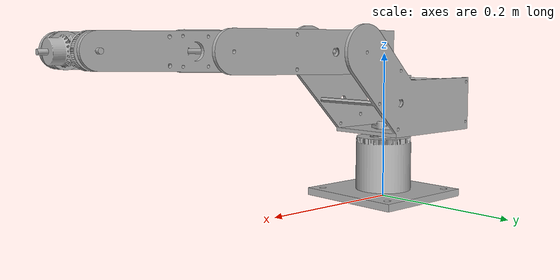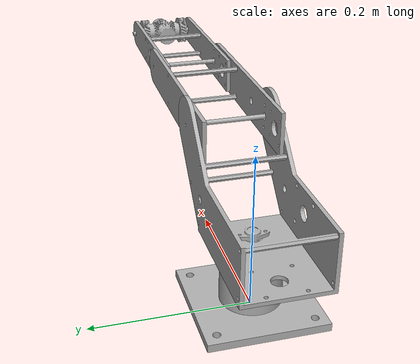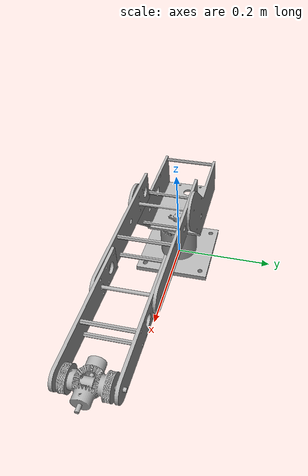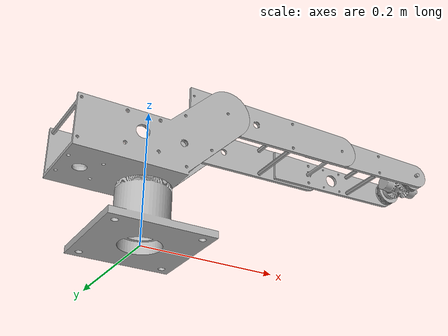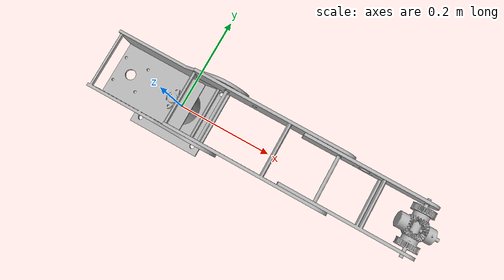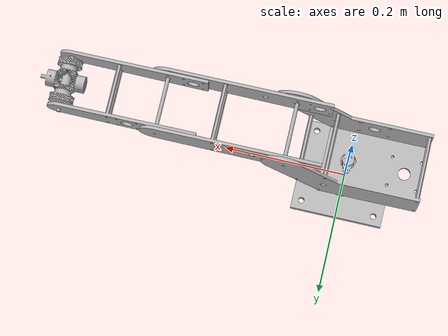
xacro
<?xml version="1.0" ?>
<!-- |    This document was autogenerated by xacro from /home/edmilson/catkin_ws/src/ude_test/ude_test_description/urdf/ude_test.xacro | -->
<!-- |    EDITING THIS FILE BY HAND IS NOT RECOMMENDED                                 | -->
<robot name="ude_test" xmlns:xacro="http://www.ros.org/wiki/xacro">
    <material name="silver">
        <color rgba="0.700 0.700 0.700 1.000" />
    </material>
    <transmission name="trans_joint1">
        <type>transmission_interface/SimpleTransmission</type>
        <joint name="joint1">
            <hardwareInterface>hardware_interface/EffortJointInterface</hardwareInterface>
        </joint>
        <actuator name="joint1_motor">
            <hardwareInterface>hardware_interface/EffortJointInterface</hardwareInterface>
            <mechanicalReduction>1</mechanicalReduction>
        </actuator>
    </transmission>
    <transmission name="trans_joint2">
        <type>transmission_interface/SimpleTransmission</type>
        <joint name="joint2">
            <hardwareInterface>hardware_interface/EffortJointInterface</hardwareInterface>
        </joint>
        <actuator name="joint2_motor">
            <hardwareInterface>hardware_interface/EffortJointInterface</hardwareInterface>
            <mechanicalReduction>1</mechanicalReduction>
        </actuator>
    </transmission>
    <transmission name="trans_joint3">
        <type>transmission_interface/SimpleTransmission</type>
        <joint name="joint3">
            <hardwareInterface>hardware_interface/EffortJointInterface</hardwareInterface>
        </joint>
        <actuator name="joint3_motor">
            <hardwareInterface>hardware_interface/EffortJointInterface</hardwareInterface>
            <mechanicalReduction>1</mechanicalReduction>
        </actuator>
    </transmission>
    <transmission name="trans_joint4">
        <type>transmission_interface/SimpleTransmission</type>
        <joint name="joint4">
            <hardwareInterface>hardware_interface/EffortJointInterface</hardwareInterface>
        </joint>
        <actuator name="joint4_motor">
            <hardwareInterface>hardware_interface/EffortJointInterface</hardwareInterface>
            <mechanicalReduction>1</mechanicalReduction>
        </actuator>
    </transmission>
    <gazebo>
        <plugin name="gazebo_ros_control" filename="libgazebo_ros_control.so">
            <robotSimType>gazebo_ros_control/DefaultRobotHWSim</robotSimType>
            <legacyModeNS>true</legacyModeNS>
        </plugin>
    </gazebo>

    <gazebo reference="base_link">
        <material>Gazebo/Silver</material>
        <mu1>0.2</mu1>
        <mu2>0.2</mu2>
        <selfCollide>true</selfCollide>
        <gravity>true</gravity>
    </gazebo>
    <gazebo reference="base_1">
        <material>Gazebo/Silver</material>
        <mu1>0.2</mu1>
        <mu2>0.2</mu2>
        <selfCollide>true</selfCollide>
    </gazebo>
    <gazebo reference="centro_1">
        <material>Gazebo/Silver</material>
        <mu1>0.2</mu1>
        <mu2>0.2</mu2>
        <selfCollide>true</selfCollide>
    </gazebo>
    <gazebo reference="superior_1">
        <material>Gazebo/Silver</material>
        <mu1>0.2</mu1>
        <mu2>0.2</mu2>
        <selfCollide>true</selfCollide>
    </gazebo>
    <gazebo reference="punho_1">
        <material>Gazebo/Silver</material>
        <mu1>0.2</mu1>
        <mu2>0.2</mu2>
        <selfCollide>true</selfCollide>
    </gazebo>

    <link name="world"/>

    <link name="base_link">
        <inertial>
            <origin rpy="0 0 0" xyz="5.710007331408909e-12 -1.1644376128304597e-13 0.030568937878395663" />
            <mass value="1.1785035355525202" />
            <inertia ixx="0.002276" ixy="-0.0" ixz="-0.0" iyy="0.002276" iyz="-0.0" izz="0.002779" />
        </inertial>

        <visual>
            <origin rpy="0 0 0" xyz="0 0 0" />
            <geometry>
                <mesh filename="package://ude_test_description/meshes/base_link.stl" scale="0.001 0.001 0.001" />
            </geometry>
            <material name="silver" />
        </visual>
        <collision>
            <origin rpy="0 0 0" xyz="0 0 0" />
            <geometry>
                <mesh filename="package://ude_test_description/meshes/base_link.stl" scale="0.001 0.001 0.001" />
            </geometry>
        </collision>
    </link>
    <link name="base_1">
        <inertial>
            <origin rpy="0 0 0" xyz="-0.00554725663950478 0.000967644113690025 0.057553169706411264" />
            <mass value="0.7929685802085628" />
            <inertia ixx="0.002977" ixy="3e-06" ixz="-0.001299" iyy="0.004869" iyz="-5e-06" izz="0.005235" />
        </inertial>

        <visual>
            <origin rpy="0 0 0" xyz="0.0 0.0 -0.074675" />
            <geometry>
                <mesh filename="package://ude_test_description/meshes/base_1.stl" scale="0.001 0.001 0.001" />
            </geometry>
            <material name="silver" />
        </visual>
        <collision>
            <origin rpy="0 0 0" xyz="0.0 0.0 -0.074675" />
            <geometry>
                <mesh filename="package://ude_test_description/meshes/base_1.stl" scale="0.001 0.001 0.001" />
            </geometry>
        </collision>
    </link>
    <link name="centro_1">
        <inertial>
            <origin rpy="0 0 0" xyz="0.08388027617634465 0.04573033642969338 0.0007305036097426942" />
            <mass value="0.40207170281895677" />
            <inertia ixx="0.000983" ixy="2.3e-05" ixz="-2.2e-05" iyy="0.00267" iyz="0.0" izz="0.003461" />
        </inertial>

        <visual>
            <origin rpy="0 0 0" xyz="-0.096621 0.044123 -0.202696" />
            <geometry>
                <mesh filename="package://ude_test_description/meshes/centro_1.stl" scale="0.001 0.001 0.001" />
            </geometry>
            <material name="silver" />
        </visual>
        <collision>
            <origin rpy="0 0 0" xyz="-0.096621 0.044123 -0.202696" />
            <geometry>
                <mesh filename="package://ude_test_description/meshes/centro_1.stl" scale="0.001 0.001 0.001" />
            </geometry>
        </collision>
    </link>
    <link name="superior_1">
        <inertial>
            <origin rpy="0 0 0" xyz="0.05025376123182013 0.042250903270122424 0.0004383003960906906" />
            <mass value="0.2540286808120098" />
            <inertia ixx="0.000488" ixy="1.6e-05" ixz="-9e-06" iyy="0.001139" iyz="0.0" izz="0.001549" />
        </inertial>

        <visual>
            <origin rpy="0 0 0" xyz="-0.299807 0.040821 -0.204463" />
            <geometry>
                <mesh filename="package://ude_test_description/meshes/superior_1.stl" scale="0.001 0.001 0.001" />
            </geometry>
            <material name="silver" />
        </visual>
        <collision>
            <origin rpy="0 0 0" xyz="-0.299807 0.040821 -0.204463" />
            <geometry>
                <mesh filename="package://ude_test_description/meshes/superior_1.stl" scale="0.001 0.001 0.001" />
            </geometry>
        </collision>
    </link>
    <link name="punho_1">
        <inertial>
            <origin rpy="0 0 0" xyz="-0.00013370847016941356 0.049508248218208734 3.643798942826182e-06" />
            <mass value="0.16348109229873525" />
            <inertia ixx="8.2e-05" ixy="0.0" ixz="1e-06" iyy="4.2e-05" iyz="-0.0" izz="0.000105" />
        </inertial>

        <visual>
            <origin rpy="0 0 0" xyz="-0.452217 0.047838 -0.205789" />
            <geometry>
                <mesh filename="package://ude_test_description/meshes/punho_1.stl" scale="0.001 0.001 0.001" />
            </geometry>
            <material name="silver" />
        </visual>
        <collision>
            <origin rpy="0 0 0" xyz="-0.452217 0.047838 -0.205789" />
            <geometry>
                <mesh filename="package://ude_test_description/meshes/punho_1.stl" scale="0.001 0.001 0.001" />
            </geometry>
        </collision>
    </link>

    <joint name="fixed" type="fixed">
        <parent link="world"/>
        <child link="base_link"/>
    </joint>
    <joint name="joint1" type="revolute">
        <origin rpy="0 0 0" xyz="0.0 0.0 0.074675" />
        <parent link="base_link" />
        <child link="base_1" />
        <axis xyz="-0.0 0.0 1.0" />
        <limit effort="100" lower="-1.570796" upper="1.570796" velocity="100" />
    </joint>
    <joint name="joint2" type="revolute">
        <origin rpy="0 0 0" xyz="0.096621 -0.044123 0.128021" />
        <parent link="base_1" />
        <child link="centro_1" />
        <axis xyz="-0.002271 0.999997 -0.0" />
        <limit effort="100" lower="-2.617994" upper="0.872665" velocity="100" />
    </joint>
    <joint name="joint3" type="revolute">
        <origin rpy="0 0 0" xyz="0.203186 0.003302 0.001767" />
        <parent link="centro_1" />
        <child link="superior_1" />
        <axis xyz="0.002271 -0.999997 -0.0" />
        <limit effort="100" lower="-2.530727" upper="0.0" velocity="100" />
    </joint>
    <joint name="joint4" type="revolute">
        <origin rpy="0 0 0" xyz="0.15241 -0.007017 0.001326" />
        <parent link="superior_1" />
        <child link="punho_1" />
        <axis xyz="-0.002271 0.999997 0.0" />
        <limit effort="100" lower="-3.14" upper="3.14" velocity="100" />
    </joint>

</robot>
